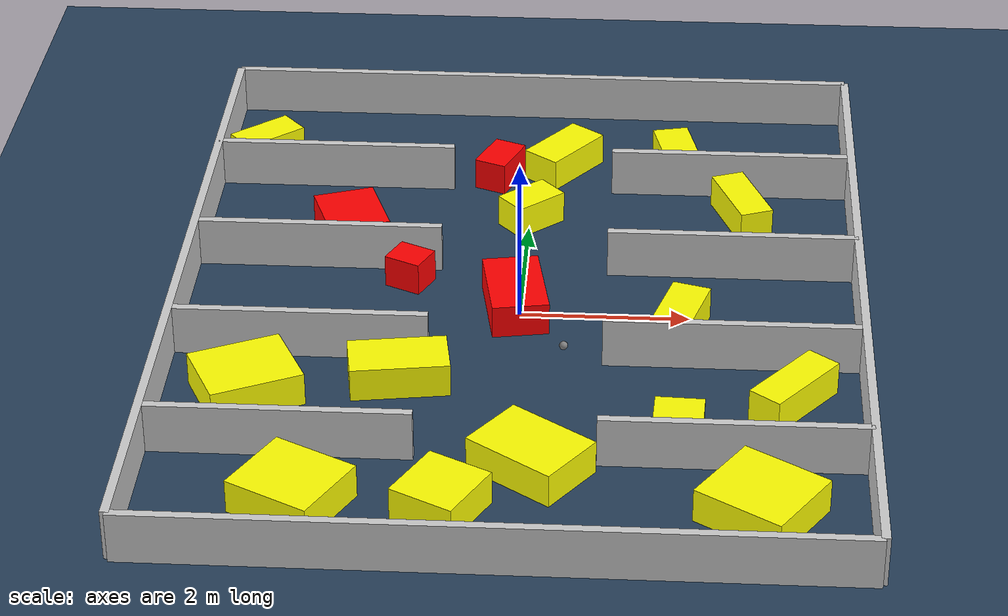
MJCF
<?xml version="1.0" ?>
<mujoco model="generated_environment">
  <option timestep="0.01" integrator="RK4" cone="elliptic"/>
  <default>
    <geom density="1"/>
  </default>
  <asset>
    <texture builtin="gradient" height="3072" rgb1="0.3 0.5 0.7" rgb2="0 0 0" type="skybox" width="512"/>
    <texture builtin="checker" height="300" mark="edge" markrgb="0.8 0.8 0.8" name="groundplane" rgb1="0.2 0.3 0.4" rgb2="0.1 0.2 0.3" type="2d" width="300"/>
    <material name="groundplane" reflectance="0.2" texrepeat="5 5" texture="groundplane" texuniform="true"/>
    <material name="robot" rgba="0.0 1.0 0.0 1"/>
  </asset>
  <worldbody>
    <light dir="0 0 -1" directional="true" pos="0 0 1.5"/>
    <geom condim="4" friction="1.0 0.005 0.001" material="groundplane" name="floor" size="0 0 0.05" type="plane"/>
    <body name="walls">
      <geom name="wall_1" condim="4" pos="-4.0 0.0 0.3" rgba="0.800000011920929 0.800000011920929 0.800000011920929 1.0" size="0.05 5.0 0.3" type="box"/>
      <geom name="wall_2" condim="4" pos="4.0 0.0 0.3" rgba="0.800000011920929 0.800000011920929 0.800000011920929 1.0" size="0.05 5.0 0.3" type="box"/>
      <geom name="wall_3" condim="4" pos="0.0 -5.0 0.3" rgba="0.800000011920929 0.800000011920929 0.800000011920929 1.0" size="4.0 0.05 0.3" type="box"/>
      <geom name="wall_4" condim="4" pos="0.0 5.0 0.3" rgba="0.800000011920929 0.800000011920929 0.800000011920929 1.0" size="4.0 0.05 0.3" type="box"/>
      <geom name="wall_5" condim="4" pos="-2.5 -3.0 0.3" rgba="0.800000011920929 0.800000011920929 0.800000011920929 1.0" size="1.5 0.05 0.3" type="box"/>
      <geom name="wall_6" condim="4" pos="2.5 -3.0 0.3" rgba="0.800000011920929 0.800000011920929 0.800000011920929 1.0" size="1.5 0.05 0.3" type="box"/>
      <geom name="wall_7" condim="4" pos="-2.5 -1.0 0.3" rgba="0.800000011920929 0.800000011920929 0.800000011920929 1.0" size="1.5 0.05 0.3" type="box"/>
      <geom name="wall_8" condim="4" pos="2.5 -1.0 0.3" rgba="0.800000011920929 0.800000011920929 0.800000011920929 1.0" size="1.5 0.05 0.3" type="box"/>
      <geom name="wall_9" condim="4" pos="-2.5 1.0 0.3" rgba="0.800000011920929 0.800000011920929 0.800000011920929 1.0" size="1.5 0.05 0.3" type="box"/>
      <geom name="wall_10" condim="4" pos="2.5 1.0 0.3" rgba="0.800000011920929 0.800000011920929 0.800000011920929 1.0" size="1.5 0.05 0.3" type="box"/>
      <geom name="wall_11" condim="4" pos="-2.5 3.0 0.3" rgba="0.800000011920929 0.800000011920929 0.800000011920929 1.0" size="1.5 0.05 0.3" type="box"/>
      <geom name="wall_12" condim="4" pos="2.5 3.0 0.3" rgba="0.800000011920929 0.800000011920929 0.800000011920929 1.0" size="1.5 0.05 0.3" type="box"/>
    </body>
    <body name="robot">
      <joint name="joint_x" type="slide" pos="0 0 0" axis="1 0 0"/>
      <joint name="joint_y" type="slide" pos="0 0 0" axis="0 1 0"/>
      <geom name="robot" type="sphere" pos="0.5546516819310643 -0.959409165259725 0.2" size="0.05" mass="5." friction="1.0 0.005 0.0001" condim="4"/>
      <site name="sensor_ball"/>
    </body>
    <body name="obstacle_1_movable">
      <geom name="obstacle_1_movable" condim="4" pos="1.892354224918706 -0.30933956449038824 0.2" euler="0 0 73.4005173389823" friction="1.0 0.005 0.001" rgba="1 1 0 1" size="0.4553994890000814 0.23090508999009357 0.2" type="box" mass="0.1"/>
      <joint type="free"/>
    </body>
    <body name="obstacle_2_static">
      <geom name="obstacle_2_static" condim="4" pos="-0.43126348485000054 3.2240225770700324 0.2" euler="0 0 67.83141759879524" friction="1.0 0.005 0.001" rgba="1 0 0 1" size="0.30890557248711686 0.20503839174724403 0.2" type="box"/>
    </body>
    <body name="obstacle_3_movable">
      <geom name="obstacle_3_movable" condim="4" pos="0.29371046885877883 -3.168988116909044 0.2" euler="0 0 54.308405835369854" friction="1.0 0.005 0.001" rgba="1 1 0 1" size="0.4140050957945821 0.5740093050122106 0.2" type="box" mass="0.1"/>
      <joint type="free"/>
    </body>
    <body name="obstacle_4_movable">
      <geom name="obstacle_4_movable" condim="4" pos="0.01863018067582889 2.170599469121842 0.2" euler="0 0 41.51156183235037" friction="1.0 0.005 0.001" rgba="1 1 0 1" size="0.34542292785523193 0.21824790751837586 0.2" type="box" mass="0.1"/>
      <joint type="free"/>
    </body>
    <body name="obstacle_5_movable">
      <geom name="obstacle_5_movable" condim="4" pos="1.812273962270099 3.5918392239551844 0.2" euler="0 0 102.75451240131828" friction="1.0 0.005 0.001" rgba="1 1 0 1" size="0.40210458339618665 0.22520401860567738 0.2" type="box" mass="0.1"/>
      <joint type="free"/>
    </body>
    <body name="obstacle_6_movable">
      <geom name="obstacle_6_movable" condim="4" pos="2.6330558688225545 2.3452380816470555 0.2" euler="0 0 200.8767688085398" friction="1.0 0.005 0.001" rgba="1 1 0 1" size="0.2070858261249156 0.5082364907716794 0.2" type="box" mass="0.1"/>
      <joint type="free"/>
    </body>
    <body name="obstacle_7_movable">
      <geom name="obstacle_7_movable" condim="4" pos="-0.6224223632764265 -3.9722931941524426 0.2" euler="0 0 332.04493351623825" friction="1.0 0.005 0.001" rgba="1 1 0 1" size="0.3893130613754501 0.40754103246470397 0.2" type="box" mass="0.1"/>
      <joint type="free"/>
    </body>
    <body name="obstacle_8_movable">
      <geom name="obstacle_8_movable" condim="4" pos="2.7814143698842226 -3.866969568113152 0.2" euler="0 0 236.79141666307032" friction="1.0 0.005 0.001" rgba="1 1 0 1" size="0.5071421097140865 0.5430973311456948 0.2" type="box" mass="0.1"/>
      <joint type="free"/>
    </body>
    <body name="obstacle_9_movable">
      <geom name="obstacle_9_movable" condim="4" pos="-2.21932430591637 -3.931413662213295 0.2" euler="0 0 242.00655155882407" friction="1.0 0.005 0.001" rgba="1 1 0 1" size="0.4791101006970961 0.518124910162749 0.2" type="box" mass="0.1"/>
      <joint type="free"/>
    </body>
    <body name="obstacle_10_movable">
      <geom name="obstacle_10_movable" condim="4" pos="0.37207099882150585 3.5341495765619557 0.2" euler="0 0 142.83178250325273" friction="1.0 0.005 0.001" rgba="1 1 0 1" size="0.2516910461357803 0.4805122443230739 0.2" type="box" mass="0.1"/>
      <joint type="free"/>
    </body>
    <body name="obstacle_11_movable">
      <geom name="obstacle_11_movable" condim="4" pos="-1.2951085387264785 -1.537249105412188 0.2" euler="0 0 98.694826101162" friction="1.0 0.005 0.001" rgba="1 1 0 1" size="0.32018599469242287 0.569917827197463 0.2" type="box" mass="0.1"/>
      <joint type="free"/>
    </body>
    <body name="obstacle_12_static">
      <geom name="obstacle_12_static" condim="4" pos="-2.1762543620708277 1.697826344697396 0.2" euler="0 0 289.74973790270843" friction="1.0 0.005 0.001" rgba="1 0 0 1" size="0.4413588348458116 0.3763747025625992 0.2" type="box"/>
    </body>
    <body name="obstacle_13_movable">
      <geom name="obstacle_13_movable" condim="4" pos="3.172800321757348 -1.769691524878902 0.2" euler="0 0 321.3375513810931" friction="1.0 0.005 0.001" rgba="1 1 0 1" size="0.21080582841729234 0.5527361333294495 0.2" type="box" mass="0.1"/>
      <joint type="free"/>
    </body>
    <body name="obstacle_14_static">
      <geom name="obstacle_14_static" condim="4" pos="-1.3595213399013883 0.6561367535692275 0.2" euler="0 0 64.52864018281372" friction="1.0 0.005 0.001" rgba="1 0 0 1" size="0.20123439012437047 0.23056211531744683 0.2" type="box"/>
    </body>
    <body name="obstacle_15_movable">
      <geom name="obstacle_15_movable" condim="4" pos="-2.99670597835623 -1.8555907048965965 0.2" euler="0 0 295.5407336034254" friction="1.0 0.005 0.001" rgba="1 1 0 1" size="0.4572559505594587 0.5487459584636731 0.2" type="box" mass="0.1"/>
      <joint type="free"/>
    </body>
    <body name="obstacle_16_movable">
      <geom name="obstacle_16_movable" condim="4" pos="1.8855896505025607 -2.5299264425609347 0.2" euler="0 0 267.49866617399465" friction="1.0 0.005 0.001" rgba="1 1 0 1" size="0.2700426313749328 0.2788774830703483 0.2" type="box" mass="0.1"/>
      <joint type="free"/>
    </body>
    <body name="obstacle_17_static">
      <geom name="obstacle_17_static" condim="4" pos="-0.061240101902331645 0.08730771658526049 0.2" euler="0 0 189.81200383250234" friction="1.0 0.005 0.001" rgba="1 0 0 1" size="0.3365397775860033 0.5601844613165323 0.2" type="box"/>
    </body>
    <body name="obstacle_18_movable">
      <geom name="obstacle_18_movable" condim="4" pos="-3.480477547209028 3.6360766787831738 0.2" euler="0 0 40.78833688663505" friction="1.0 0.005 0.001" rgba="1 1 0 1" size="0.42334163535066816 0.2152136768715821 0.2" type="box" mass="0.1"/>
      <joint type="free"/>
    </body>
  </worldbody>
  <actuator>
    <motor name="actuator_x" joint="joint_x" gear="1" ctrlrange="-1 1"/>
    <motor name="actuator_y" joint="joint_y" gear="1" ctrlrange="-1 1"/>
  </actuator>
</mujoco>
